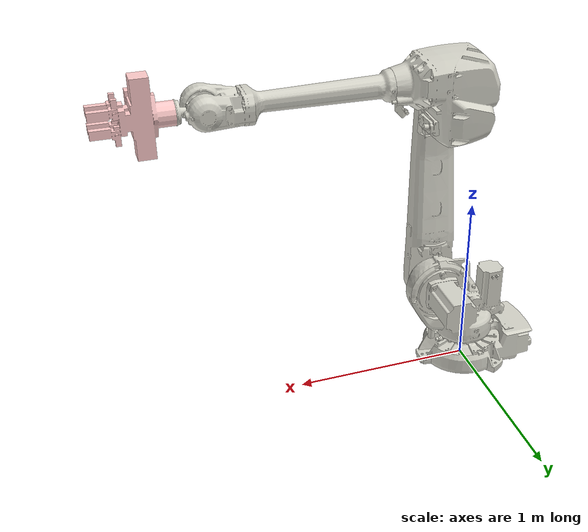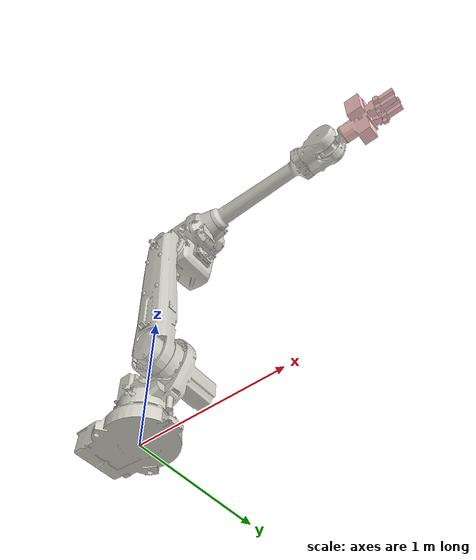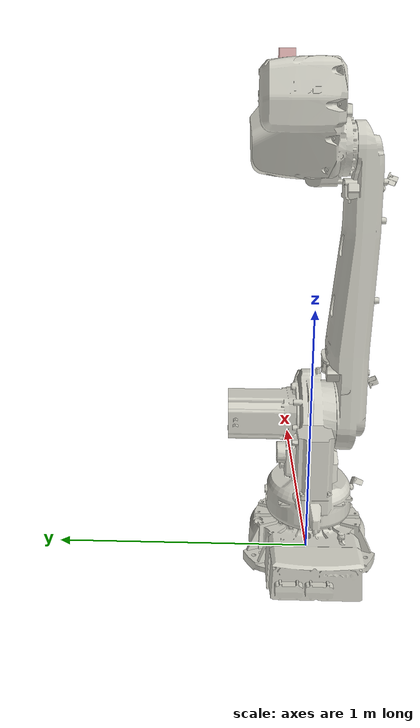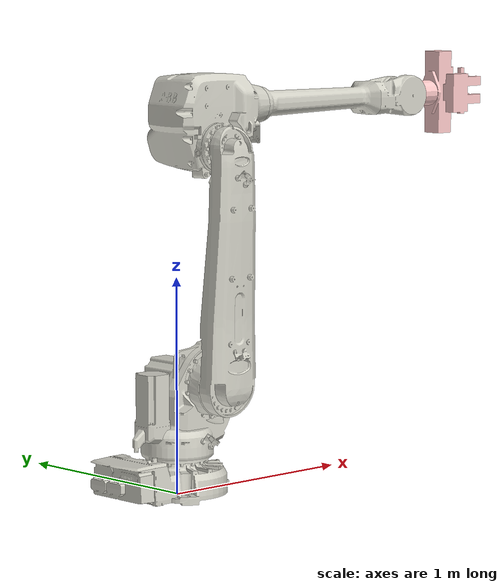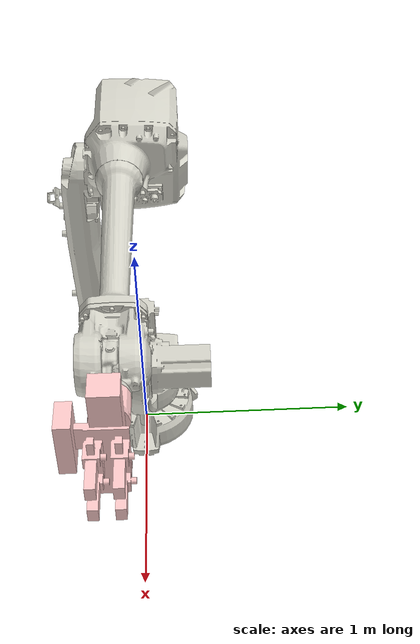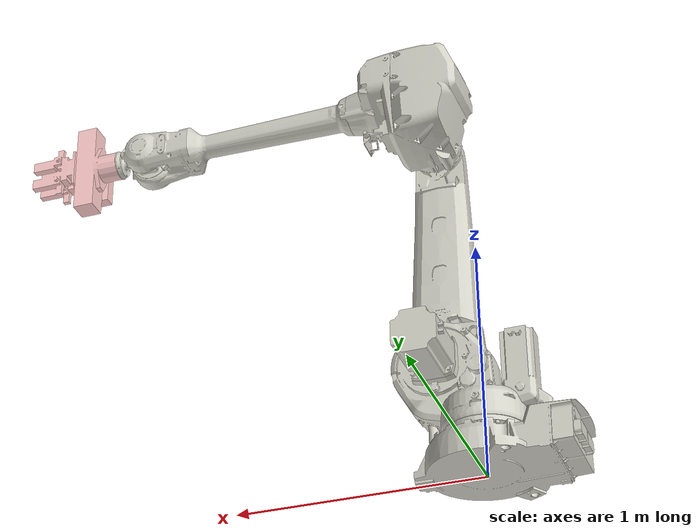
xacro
<?xml version="1.0"?>
<robot xmlns:xacro="http://www.ros.org/wiki/xacro" name="abb_irb4600_40_255">
    <xacro:arg name="initial_positions_file" default="initial_positions.yaml" />

    <!-- Import abb_irb4600_40_255 urdf file -->
    <xacro:include filename="$(find abb_irb4600_40_255)/urdf/abb_irb4600_40_255.urdf" />

    <!-- Import control_xacro -->
    <xacro:include filename="$(find abb_irb4600_40_255)/urdf/abb_irb4600_40_255.ros2_control.xacro" />

    <xacro:abb_irb4600_40_255_ros2_control name="FakeSystem" initial_positions_file="$(arg initial_positions_file)"/>

</robot>

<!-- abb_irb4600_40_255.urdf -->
<!-- |    This document was autogenerated by xacro from abb_irb4600_40_255.xacro       | -->
<!-- |    EDITING THIS FILE BY HAND IS NOT RECOMMENDED                                 | -->
<robot name="abb_irb4600_40_255">
  <!-- Conversion were obtained from http://www.e-paint.co.uk/Lab_values.asp
       unless otherwise stated. -->
  <!-- GRIPPER -->
  <!-- gripper link list -->
  <link name="gripper">
    <visual>
      <geometry>
        <mesh filename="package://abb_irb4600_40_255/meshes/visual/gripper.stl"/>
      </geometry>
      <material name="">
        <color rgba="1.0 0.8 0.796078431372549 1"/>
      </material>
    </visual>
    <collision>
      <geometry>
        <mesh filename="package://abb_irb4600_40_255/meshes/collision/gripper.stl"/>
      </geometry>
      <material name="">
        <color rgba="1.0 0.8 0.796078431372549 1"/>
      </material>
    </collision>
  </link>
  <link name="tcp"/>
  <!-- gripper joint list -->
  <joint name="gripper_joint" type="fixed">
    <parent link="tool0"/>
    <child link="gripper"/>
    <origin rpy="0 0 0" xyz="0 0 0"/>
  </joint>
  <joint name="tcp_joint" type="fixed">
    <parent link="gripper"/>
    <child link="tcp"/>
    <origin rpy="0 0 0" xyz="0 0 0.352"/>
  </joint>
  <!-- IRB4600 -->
  <!-- irb4600 link list -->
  <link name="base_link">
    <inertial>
      <origin xyz="0.0 0.0 0.0"/>
      <mass value="120.00000"/>
      <inertia ixx="-4.98000" ixy="-0.00000" ixz="2.70000" iyy="-5.95200" iyz="-0.00000" izz="0.82800"/>
    </inertial>
    <visual>
      <geometry>
        <mesh filename="package://abb_irb4600_40_255/meshes/visual/base_link.stl"/>
      </geometry>
      <material name="">
        <color rgba="0.8392157 0.8352941 0.7921569 1"/>
      </material>
    </visual>
    <collision>
      <geometry>
        <mesh filename="package://abb_irb4600_40_255/meshes/collision/base_link.stl"/>
      </geometry>
      <material name="">
        <color rgba="0.8392157 0.8352941 0.7921569 1"/>
      </material>
    </collision>
  </link>
  <link name="link_1">
    <inertial>
      <origin xyz="0.18000 0.00000 0.50000"/>
      <mass value="120.00000"/>
      <inertia ixx="-4.98000" ixy="-0.00000" ixz="2.70000" iyy="-5.95200" iyz="-0.00000" izz="0.82800"/>
    </inertial>
    <visual>
      <geometry>
        <mesh filename="package://abb_irb4600_40_255/meshes/visual/link_1.stl"/>
      </geometry>
      <material name="">
        <color rgba="0.8392157 0.8352941 0.7921569 1"/>
      </material>
    </visual>
    <collision>
      <geometry>
        <mesh filename="package://abb_irb4600_40_255/meshes/collision/link_1.stl"/>
      </geometry>
      <material name="">
        <color rgba="0.8392157 0.8352941 0.7921569 1"/>
      </material>
    </collision>
  </link>
  <link name="link_2">
    <inertial>
      <origin xyz="0.94000 0.08000 -0.34000"/>
      <mass value="120.00000"/>
      <inertia ixx="-2.96000" ixy="2.25600" ixz="-9.58800" iyy="-18.72601" iyz="-0.81600" izz="-14.95000"/>
    </inertial>
    <visual>
      <geometry>
        <mesh filename="package://abb_irb4600_40_255/meshes/visual/link_2.stl"/>
      </geometry>
      <material name="">
        <color rgba="0.8392157 0.8352941 0.7921569 1"/>
      </material>
    </visual>
    <collision>
      <geometry>
        <mesh filename="package://abb_irb4600_40_255/meshes/collision/link_2.stl"/>
      </geometry>
      <material name="">
        <color rgba="0.8392157 0.8352941 0.7921569 1"/>
      </material>
    </collision>
  </link>
  <link name="link_3">
    <inertial>
      <origin xyz="0.07000 -0.26600 0.08800"/>
      <mass value="120.00000"/>
      <inertia ixx="1.34500" ixy="-0.55860" ixz="0.18480" iyy="4.65068" iyz="-0.70224" izz="2.76032"/>
    </inertial>
    <visual>
      <geometry>
        <mesh filename="package://abb_irb4600_40_255/meshes/visual/link_3.stl"/>
      </geometry>
      <material name="">
        <color rgba="0.8392157 0.8352941 0.7921569 1"/>
      </material>
    </visual>
    <collision>
      <geometry>
        <mesh filename="package://abb_irb4600_40_255/meshes/collision/link_3.stl"/>
      </geometry>
      <material name="">
        <color rgba="0.8392157 0.8352941 0.7921569 1"/>
      </material>
    </collision>
  </link>
  <link name="link_4">
    <inertial>
      <origin xyz="0.00000 0.00000 1.00000"/>
      <mass value="40.00000"/>
      <inertia ixx="-8.00000" ixy="-0.00000" ixz="-0.00000" iyy="-8.00000" iyz="-0.00000" izz="0.48200"/>
    </inertial>
    <visual>
      <geometry>
        <mesh filename="package://abb_irb4600_40_255/meshes/visual/link_4.stl"/>
      </geometry>
      <material name="">
        <color rgba="0.8392157 0.8352941 0.7921569 1"/>
      </material>
    </visual>
    <collision>
      <geometry>
        <mesh filename="package://abb_irb4600_40_255/meshes/collision/link_4.stl"/>
      </geometry>
      <material name="">
        <color rgba="0.8392157 0.8352941 0.7921569 1"/>
      </material>
    </collision>
  </link>
  <link name="link_5">
    <inertial>
      <origin xyz="0.14000 0.00000 0.00000"/>
      <mass value="10.00000"/>
      <inertia ixx="0.04000" ixy="-0.00000" ixz="-0.00000" iyy="-0.00900" iyz="-0.00000" izz="-0.00400"/>
    </inertial>
    <visual>
      <geometry>
        <mesh filename="package://abb_irb4600_40_255/meshes/visual/link_5.stl"/>
      </geometry>
      <material name="">
        <color rgba="0.8392157 0.8352941 0.7921569 1"/>
      </material>
    </visual>
    <collision>
      <geometry>
        <mesh filename="package://abb_irb4600_40_255/meshes/collision/link_5.stl"/>
      </geometry>
      <material name="">
        <color rgba="0.8392157 0.8352941 0.7921569 1"/>
      </material>
    </collision>
  </link>
  <link name="link_6">
    <inertial>
      <origin xyz="0.08100 -0.09100 0.33200"/>
      <mass value="5.00000"/>
      <inertia ixx="-0.29652" ixy="-0.03686" ixz="0.09396" iyy="-0.28792" iyz="-0.10556" izz="-0.04621"/>
    </inertial>
    <visual>
      <geometry>
        <mesh filename="package://abb_irb4600_40_255/meshes/visual/link_6.stl"/>
      </geometry>
      <material name="">
        <color rgba="0.8392157 0.8352941 0.7921569 1"/>
      </material>
    </visual>
    <collision>
      <geometry>
        <mesh filename="package://abb_irb4600_40_255/meshes/collision/link_6.stl"/>
      </geometry>
      <material name="">
        <color rgba="0.8392157 0.8352941 0.7921569 1"/>
      </material>
    </collision>
  </link>
  <link name="tool0"/>
  <!-- irb4600 joint list -->
  <joint name="joint_1" type="revolute">
    <parent link="base_link"/>
    <child link="link_1"/>
    <origin rpy="0 0 0" xyz="0 0 0.495"/>
    <axis xyz="0 0 1"/>
    <limit effort="100000" lower="-3.141592653589793" upper="3.141592653589793" velocity="2.618"/>
    <dynamics damping="0.2" friction="0"/>
  </joint>
  <joint name="joint_2" type="revolute">
    <parent link="link_1"/>
    <child link="link_2"/>
    <origin rpy="0 0 0" xyz="0.175 0 0"/>
    <axis xyz="0 1 0"/>
    <limit effort="100000" lower="-1.3089969389957472" upper="2.6179938779914944" velocity="2.618"/>
    <dynamics damping="0.2" friction="0"/>
  </joint>
  <joint name="joint_3" type="revolute">
    <parent link="link_2"/>
    <child link="link_3"/>
    <origin rpy="0 0 0" xyz="0 0 1.095"/>
    <axis xyz="0 1 0"/>
    <limit effort="100000" lower="-3.141592653589793" upper="1.3089969389957472" velocity="2.618"/>
    <dynamics damping="0.2" friction="0"/>
  </joint>
  <joint name="joint_4" type="revolute">
    <parent link="link_3"/>
    <child link="link_4"/>
    <origin rpy="0 0 0" xyz="0 0 0.175"/>
    <axis xyz="1 0 0"/>
    <limit effort="10000" lower="-6.981317007977318" upper="6.981317007977318" velocity="6.2832"/>
    <dynamics damping="0.2" friction="0"/>
  </joint>
  <joint name="joint_5" type="revolute">
    <parent link="link_4"/>
    <child link="link_5"/>
    <origin rpy="0 0 0" xyz="1.270 0 0"/>
    <axis xyz="0 1 0"/>
    <limit effort="100000" lower="-2.181661564992912" upper="2.0943951023931953" velocity="6.2832"/>
    <dynamics damping="0.2" friction="0"/>
  </joint>
  <joint name="joint_6" type="revolute">
    <parent link="link_5"/>
    <child link="link_6"/>
    <origin rpy="0 0 0" xyz="0.135 0 0"/>
    <axis xyz="1 0 0"/>
    <limit effort="100000" lower="-6.981317007977318" upper="6.981317007977318" velocity="7.854"/>
    <dynamics damping="0.2" friction="0"/>
  </joint>
  <joint name="joint_6-tool0" type="fixed">
    <parent link="link_6"/>
    <child link="tool0"/>
    <origin rpy="0 1.5707963267948966 0" xyz="0 0 0"/>
  </joint>
  <!-- IRB4600 base_link to ABB World Coordinates transform -->
  <link name="base"/>
  <joint name="base_link-base" type="fixed">
    <parent link="base_link"/>
    <child link="base"/>
    <origin rpy="0 0 0" xyz="0 0 0"/>
  </joint>
</robot>
